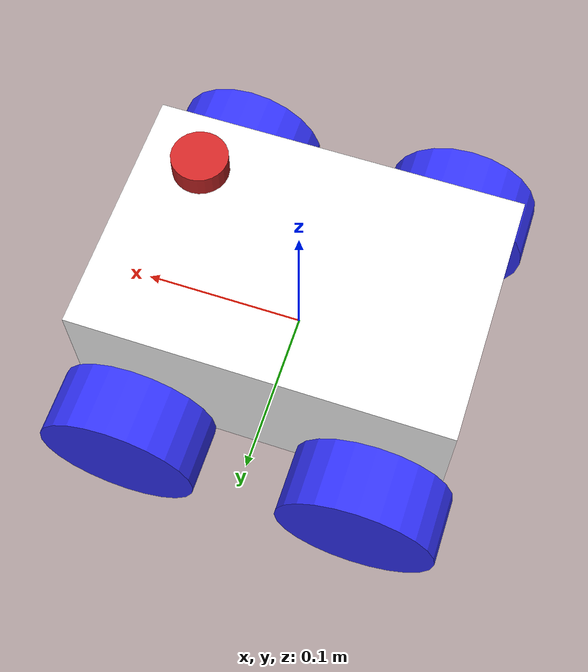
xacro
<?xml version="1.0"?>
<robot xmlns:xacro="http://www.ros.org/wiki/xacro"  name="crab_bot">

    <xacro:include filename="4wd/robot_core.4wd.xacro" />

    <xacro:arg name="use_ros2_control" default="false"/>

    <xacro:if value="$(arg use_ros2_control)">
        <xacro:include filename="4wd/ros2_control.4wd.xacro" />
    </xacro:if>

    <xacro:unless value="$(arg use_ros2_control)">
        <xacro:include filename="4wd/gazebo_control.xacro" />
    </xacro:unless>

    <xacro:include filename="accessories/lidar.xacro" />
    <xacro:include filename="accessories/dept_camera.xacro" />

</robot>

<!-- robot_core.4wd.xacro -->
<robot xmlns:xacro="http://www.ros.org/wiki/xacro">

    <xacro:include filename="$(find crab_bot)/description/macros/inertial_macros.xacro" />
    <xacro:include filename="$(find crab_bot)/description/macros/wheel.macros.xacro"/>

    <xacro:property name="chassis_length" value="0.225"/>
    <xacro:property name="chassis_width" value="0.153"/>
    <xacro:property name="chassis_height" value="0.0975"/>
    <xacro:property name="chassis_mass" value="4.0"/>
    <xacro:property name="wheel_radius" value="0.048"/>
    <xacro:property name="wheel_inner_radius" value="0.028"/>
    <xacro:property name="wheel_length" value="0.04"/>
    <xacro:property name="wheel_mass" value="0.5"/>
    <xacro:property name="wheel_separation" value="0.205"/>
    <xacro:property name="wheel_offset_x" value="0.073"/>
    <xacro:property name="wheel_offset_y" value="${wheel_separation/2}"/>
    <xacro:property name="wheel_offset_z" value="0.0"/>
    <xacro:property name="chassis_offset_z" value="0.02"/>

    <material name="white">
        <color rgba="1 1 1 1"/>
    </material>

    <material name="orange">
        <color rgba="1 0.3 0.1 1"/>
    </material>

    <material name="blue">
        <color rgba="0.2 0.2 1 1"/>
    </material>

    <material name="black">
        <color rgba="0 0 0 1"/>
    </material>

    <material name="red">
        <color rgba="1 0 0 1"/>
    </material>

    <!-- BASE LINK -->

    <link name="base_link">

    </link>

    <!-- BASE_FOOTPRINT LINK -->

    <joint name="base_footprint_joint" type="fixed">
        <parent link="base_link"/>
        <child link="base_footprint"/>
        <origin xyz="0 0 -${wheel_radius}" rpy="0 0 0"/>
    </joint>

    <link name="base_footprint">
    </link>

    <!-- CHASSIS LINK -->

    <joint name="chassis_joint" type="fixed">
        <parent link="base_link"/>
        <child link="chassis"/>
        <origin xyz="0 0 ${-chassis_offset_z}"/>
    </joint>

    <link name="chassis">
        <!-- chassis visual -->
        <visual>
            <origin xyz="0 0 ${chassis_height/2}"/>
            <geometry>
                <box size="${chassis_length} ${chassis_width} ${chassis_height}"/>
            </geometry>
            <material name="white"/>
        </visual>
        <!-- chassis interact -->
        <collision>
            <origin xyz="0 0 ${chassis_height/2}"/>
            <geometry>
                <box size="${chassis_length} ${chassis_width} ${chassis_height}"/>
            </geometry>
        </collision>
        <!-- chassis phisical -->
        <xacro:inertial_box mass="${chassis_mass}" x="${chassis_length}" y="${chassis_width}" z="${chassis_height}">
            <origin xyz="0 0 ${chassis_height/2}" rpy="0 0 0"/>
        </xacro:inertial_box>
    </link>

    <gazebo reference="chassis">
        <material>Gazebo/White</material>
    </gazebo>

    <xacro:wheel prefix="front_right">
        <origin xyz="${wheel_offset_x} ${-wheel_offset_y} ${wheel_offset_z}" rpy="0 0 0" />
    </xacro:wheel>
    <xacro:wheel prefix="rear_right">
        <origin xyz="${-wheel_offset_x} ${-wheel_offset_y} ${wheel_offset_z}" rpy="0 0 0" />
    </xacro:wheel>
    <xacro:wheel prefix="rear_left">
        <origin xyz="${-wheel_offset_x} ${wheel_offset_y} ${wheel_offset_z}" rpy="0 0 0" />
    </xacro:wheel>
    <xacro:wheel prefix="front_left">
        <origin xyz="${wheel_offset_x} ${wheel_offset_y} ${wheel_offset_z}" rpy="0 0 0" />
    </xacro:wheel>

</robot>

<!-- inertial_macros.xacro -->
<robot xmlns:xacro="http://www.ros.org/wiki/xacro" >

    <!-- Specify some standard inertial calculations https://en.wikipedia.org/wiki/List_of_moments_of_inertia -->
    <!-- These make use of xacro's mathematical functionality -->

    <xacro:macro name="inertial_sphere" params="mass radius *origin">
        <inertial>
            <xacro:insert_block name="origin"/>
            <mass value="${mass}" />
            <inertia ixx="${(2/5) * mass * (radius*radius)}" ixy="0.0" ixz="0.0"
                    iyy="${(2/5) * mass * (radius*radius)}" iyz="0.0"
                    izz="${(2/5) * mass * (radius*radius)}" />
        </inertial>
    </xacro:macro>

    <xacro:macro name="inertial_box" params="mass x y z *origin">
        <inertial>
            <xacro:insert_block name="origin"/>
            <mass value="${mass}" />
            <inertia ixx="${(1/12) * mass * (y*y+z*z)}" ixy="0.0" ixz="0.0"
                    iyy="${(1/12) * mass * (x*x+z*z)}" iyz="0.0"
                    izz="${(1/12) * mass * (x*x+y*y)}" />
        </inertial>
    </xacro:macro>

    <xacro:macro name="inertial_cylinder" params="mass length radius *origin">
        <inertial>
            <xacro:insert_block name="origin"/>
            <mass value="${mass}" />
            <inertia ixx="${(1/12) * mass * (3*radius*radius + length*length)}" ixy="0.0" ixz="0.0"
                    iyy="${(1/12) * mass * (radius*radius + length*length)}" iyz="0.0"
                    izz="${(1/12) * mass * (radius*radius)}" />
        </inertial>
    </xacro:macro>

</robot>

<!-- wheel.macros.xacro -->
<robot xmlns:xacro="http://www.ros.org/wiki/xacro">

    <!-- WHEEL MACROS -->

    <xacro:macro name="wheel" params= "prefix *joint_pose">
        <link name="${prefix}_wheel">
            <visual>
                <origin xyz="0 0 0" rpy="${pi/2} 0 0" />
                <geometry>
                    <cylinder radius="${wheel_radius}" length="${wheel_length}"/>
                </geometry>
                <material name="blue"/>
            </visual>
            <collision>
                <origin xyz="0 0 0" rpy="${pi/2} 0 0" />
                <geometry>
                    <sphere radius="${wheel_radius}"/>
                </geometry>
            </collision>
            <inertial>
                <origin xyz="0 0 0" rpy="0 0 0"/>
                <mass value="${wheel_mass}"/>
                <inertia
                    ixx="${wheel_mass / 12.0 * (3*wheel_radius*wheel_radius + wheel_length*wheel_length)}" ixy="0.0" ixz="0.0"
                    iyy="${wheel_mass / 2.0 * (wheel_radius*wheel_radius + wheel_inner_radius*wheel_inner_radius)}" iyz="0.0"
                    izz="${wheel_mass / 12.0 * (3*wheel_radius*wheel_radius + wheel_length*wheel_length)}"/>
            </inertial>
        </link>

        <joint name="${prefix}_wheel_joint" type="continuous">
            <parent link="base_link"/>
            <child link="${prefix}_wheel"/>
            <xacro:insert_block name="joint_pose"/>
            <axis xyz="0 1 0" rpy="0 0 0"/>
        </joint>

        <gazebo reference="${prefix}_wheel">
            <material>Gazebo/Black</material>
            <mu1 value="1.0"/>
            <mu2 value="0.5"/>
            <kp value="10000000.0" />
            <kd value="1.0" />
            <fdir1 value="1 0 0"/>
        </gazebo>
    </xacro:macro>

</robot>

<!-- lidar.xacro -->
<robot xmlns:xacro="http://www.ros.org/wiki/xacro">

    <!-- Lidar link -->

    <link name="lidar_link">
        <inertial>
            <origin xyz="0 0 0" rpy="0 0 0"/>
            <mass value="0.0"/>
            <inertia ixx="0.00"  ixy="0"  ixz="0" iyy="0.00" iyz="0" izz="0.00" />
        </inertial>

        <collision>
            <origin xyz="0 0 0" rpy="0 0 0"/>
            <geometry>
                <cylinder radius="0.017" length="0.014"/>
            </geometry>
        </collision>

        <visual>
            <origin xyz="0 0 0" rpy="0 0 0"/>
            <geometry>
                <cylinder radius="0.017" length="0.014"/>
            </geometry>
        </visual>
    </link>

    <!-- Lidar Joint -->

    <joint name="lidar_joint" type="fixed">
        <parent link="base_link"/>
        <child link="lidar_link"/>
        <origin xyz="0.074 -0.04 0.0845" rpy="0 0 0"/>
    </joint>

    <!-- Gazebo Plugin -->

    <gazebo reference="lidar_link">
        <material>Gazebo/Red</material>
        <sensor name="lidar" type="ray">
            <always_on>true</always_on>
            <visualize>false</visualize>
            <update_rate>5</update_rate>
            <ray>
                <scan>
                    <horizontal>
                    <samples>360</samples>
                    <resolution>1.000000</resolution>
                    <min_angle>0.000000</min_angle>
                    <max_angle>6.280000</max_angle>
                    </horizontal>
                </scan>
                <range>
                    <min>0.30000</min>
                    <max>12.0</max>
                    <resolution>0.01</resolution>
                </range>
                <noise>
                    <type>gaussian</type>
                    <mean>0.0</mean>
                    <stddev>0.01</stddev>
                </noise>
            </ray>
            <plugin name="scan" filename="libgazebo_ros_ray_sensor.so">
                <ros>
                    <remapping>~/out:=scan</remapping>
                </ros>
                <output_type>sensor_msgs/LaserScan</output_type>
                <frame_name>lidar_link</frame_name>
            </plugin>
        </sensor>
    </gazebo>

</robot>

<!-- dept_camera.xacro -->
<robot xmlns:xacro="http://www.ros.org/wiki/xacro" >

    <!-- Camera Link -->

    <link name="camera_link">
        <visual>
            <origin xyz="0 0 0" rpy="0 0 0"/>
            <geometry>
            <box size="0.015 0.130 0.022"/>
            </geometry>
        </visual>

        <collision>
            <origin xyz="0 0 0" rpy="0 0 0"/>
            <geometry>
            <box size="0.015 0.130 0.022"/>
            </geometry>
        </collision>

        <inertial>
            <origin xyz="0 0 0" rpy="0 0 0"/>
            <mass value="0.035"/>
            <inertia ixx="0.001"  ixy="0"  ixz="0" iyy="0.001" iyz="0" izz="0.001" />
        </inertial>
    </link>

    <!-- Camera Joint -->

    <joint name="camera_joint" type="fixed">
        <parent link="base_link"/>
        <child link="camera_link"/>
        <origin xyz="0.1125 0.0 0.03" rpy="0 0 0"/>
    </joint>

    <!-- Camera depth link -->

    <link name="camera_depth_frame"/>

    <joint name="camera_depth_joint" type="fixed">
        <origin xyz="0 0 0" rpy="${-pi/2} 0 ${-pi/2}"/>
        <parent link="camera_link"/>
        <child link="camera_depth_frame"/>
    </joint>

    <!-- Gazebo Plugin -->

    <gazebo reference="camera_link">
        <material>Gazebo/Blue</material>
        <sensor name="depth_camera" type="depth">
            <visualize>true</visualize>
            <update_rate>30.0</update_rate>
            <camera name="camera">
                <horizontal_fov>1.047198</horizontal_fov>
                <image>
                    <width>640</width>
                    <height>480</height>
                    <format>R8G8B8</format>
                </image>
                <clip>
                    <near>0.05</near>
                    <far>3</far>
                </clip>
            </camera>
            <plugin name="depth_camera_controller" filename="libgazebo_ros_camera.so">
                <baseline>0.2</baseline>
                <alwaysOn>true</alwaysOn>
                <updateRate>0.0</updateRate>
                <frame_name>camera_depth_frame</frame_name>
                <pointCloudCutoff>0.5</pointCloudCutoff>
                <pointCloudCutoffMax>3.0</pointCloudCutoffMax>
                <distortionK1>0</distortionK1>
                <distortionK2>0</distortionK2>
                <distortionK3>0</distortionK3>
                <distortionT1>0</distortionT1>
                <distortionT2>0</distortionT2>
                <CxPrime>0</CxPrime>
                <Cx>0</Cx>
                <Cy>0</Cy>
                <focalLength>0</focalLength>
                <hackBaseline>0</hackBaseline>
            </plugin>
        </sensor>
    </gazebo>

</robot>
